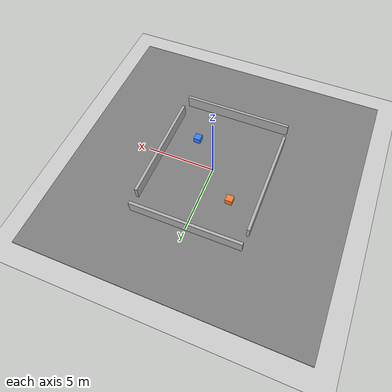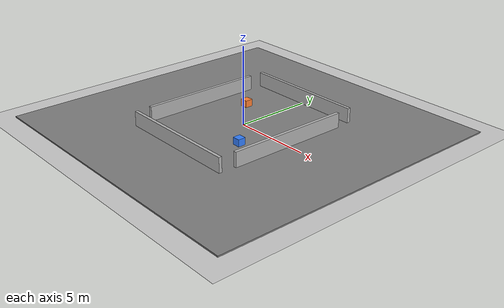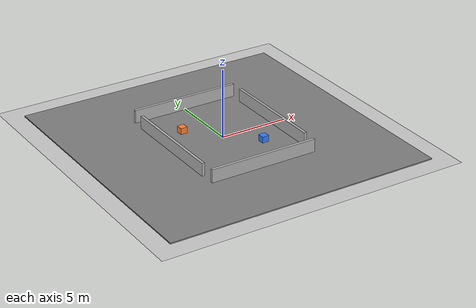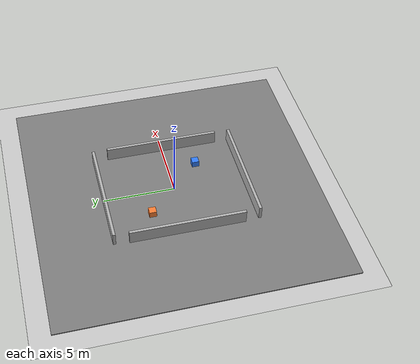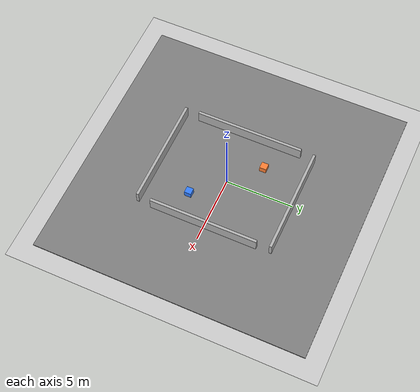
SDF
<?xml version="1.0" ?>
<sdf version="1.7">
  <world name="obstacle_course">
    <!-- Include the default outdoor world -->
    <include>
      <uri>model://ground_plane</uri>
    </include>

    <include>
      <uri>model://sun</uri>
    </include>

    <!-- Add a simple floor -->
    <model name="floor">
      <pose>0 0 0 0 0 0</pose>
      <static>true</static>
      <link name="floor_link">
        <collision name="floor_collision">
          <geometry>
            <box>
              <size>20 20 0.1</size>
            </box>
          </geometry>
        </collision>
        <visual name="floor_visual">
          <geometry>
            <box>
              <size>20 20 0.1</size>
            </box>
          </geometry>
          <material>
            <ambient>0.3 0.3 0.3 1</ambient>
            <diffuse>0.5 0.5 0.5 1</diffuse>
            <specular>0.1 0.1 0.1 1</specular>
          </material>
        </visual>
      </link>
    </model>

    <!-- Add obstacle course elements -->
    <model name="wall_1">
      <pose>0 5 0.5 0 0 0</pose>
      <static>true</static>
      <link name="wall_1_link">
        <collision name="wall_1_collision">
          <geometry>
            <box>
              <size>8 0.2 1</size>
            </box>
          </geometry>
        </collision>
        <visual name="wall_1_visual">
          <geometry>
            <box>
              <size>8 0.2 1</size>
            </box>
          </geometry>
          <material>
            <ambient>0.5 0.5 0.5 1</ambient>
            <diffuse>0.7 0.7 0.7 1</diffuse>
            <specular>0.2 0.2 0.2 1</specular>
          </material>
        </visual>
      </link>
    </model>

    <model name="wall_2">
      <pose>0 -5 0.5 0 0 0</pose>
      <static>true</static>
      <link name="wall_2_link">
        <collision name="wall_2_collision">
          <geometry>
            <box>
              <size>8 0.2 1</size>
            </box>
          </geometry>
        </collision>
        <visual name="wall_2_visual">
          <geometry>
            <box>
              <size>8 0.2 1</size>
            </box>
          </geometry>
          <material>
            <ambient>0.5 0.5 0.5 1</ambient>
            <diffuse>0.7 0.7 0.7 1</diffuse>
            <specular>0.2 0.2 0.2 1</specular>
          </material>
        </visual>
      </link>
    </model>

    <model name="wall_3">
      <pose>4 0 0.5 0 0 1.57</pose>
      <static>true</static>
      <link name="wall_3_link">
        <collision name="wall_3_collision">
          <geometry>
            <box>
              <size>8 0.2 1</size>
            </box>
          </geometry>
        </collision>
        <visual name="wall_3_visual">
          <geometry>
            <box>
              <size>8 0.2 1</size>
            </box>
          </geometry>
          <material>
            <ambient>0.5 0.5 0.5 1</ambient>
            <diffuse>0.7 0.7 0.7 1</diffuse>
            <specular>0.2 0.2 0.2 1</specular>
          </material>
        </visual>
      </link>
    </model>

    <model name="wall_4">
      <pose>-4 0 0.5 0 0 1.57</pose>
      <static>true</static>
      <link name="wall_4_link">
        <collision name="wall_4_collision">
          <geometry>
            <box>
              <size>8 0.2 1</size>
            </box>
          </geometry>
        </collision>
        <visual name="wall_4_visual">
          <geometry>
            <box>
              <size>8 0.2 1</size>
            </box>
          </geometry>
          <material>
            <ambient>0.5 0.5 0.5 1</ambient>
            <diffuse>0.7 0.7 0.7 1</diffuse>
            <specular>0.2 0.2 0.2 1</specular>
          </material>
        </visual>
      </link>
    </model>

    <!-- Add some movable obstacles -->
    <model name="movable_box_1">
      <pose>-2 2 0.25 0 0 0</pose>
      <link name="movable_box_1_link">
        <collision name="movable_box_1_collision">
          <geometry>
            <box>
              <size>0.5 0.5 0.5</size>
            </box>
          </geometry>
        </collision>
        <visual name="movable_box_1_visual">
          <geometry>
            <box>
              <size>0.5 0.5 0.5</size>
            </box>
          </geometry>
          <material>
            <ambient>0.8 0.4 0.1 1</ambient>
            <diffuse>1.0 0.5 0.2 1</diffuse>
            <specular>0.3 0.3 0.3 1</specular>
          </material>
        </visual>
        <inertial>
          <mass>1.0</mass>
          <inertia>
            <ixx>0.01</ixx>
            <iyy>0.01</iyy>
            <izz>0.01</izz>
          </inertia>
        </inertial>
      </link>
    </model>

    <model name="movable_box_2">
      <pose>2 -2 0.25 0 0 0</pose>
      <link name="movable_box_2_link">
        <collision name="movable_box_2_collision">
          <geometry>
            <box>
              <size>0.5 0.5 0.5</size>
            </box>
          </geometry>
        </collision>
        <visual name="movable_box_2_visual">
          <geometry>
            <box>
              <size>0.5 0.5 0.5</size>
            </box>
          </geometry>
          <material>
            <ambient>0.1 0.4 0.8 1</ambient>
            <diffuse>0.2 0.5 1.0 1</diffuse>
            <specular>0.3 0.3 0.3 1</specular>
          </material>
        </visual>
        <inertial>
          <mass>1.0</mass>
          <inertia>
            <ixx>0.01</ixx>
            <iyy>0.01</iyy>
            <izz>0.01</izz>
          </inertia>
        </inertial>
      </link>
    </model>

    <!-- Physics parameters -->
    <physics name="default_physics" type="ode">
      <gravity>0 0 -9.8</gravity>
      <ode>
        <solver>
          <type>quick</type>
          <iters>10</iters>
          <sor>1.3</sor>
        </solver>
        <constraints>
          <cfm>0.0</cfm>
          <erp>0.2</erp>
          <contact_max_correcting_vel>100.0</contact_max_correcting_vel>
          <contact_surface_layer>0.001</contact_surface_layer>
        </constraints>
      </ode>
    </physics>
  </world>
</sdf>
